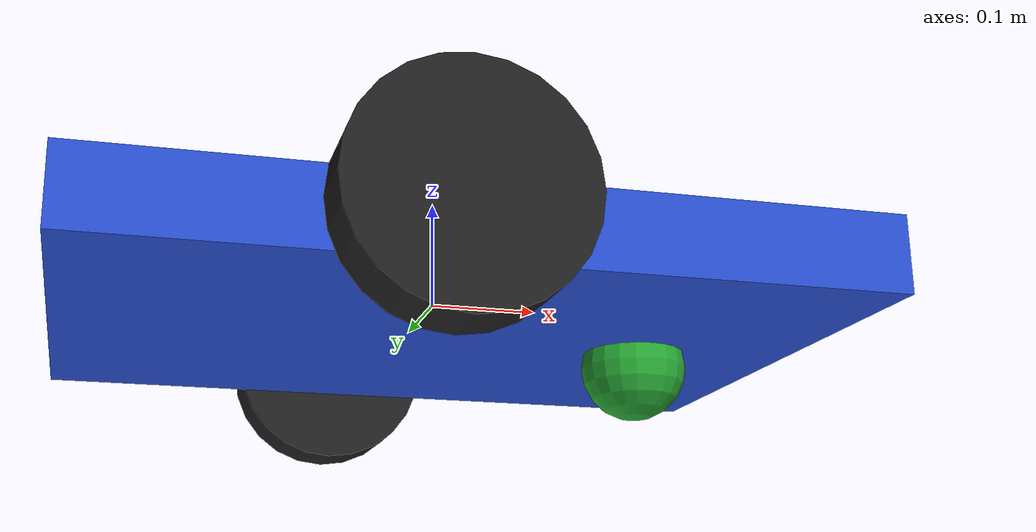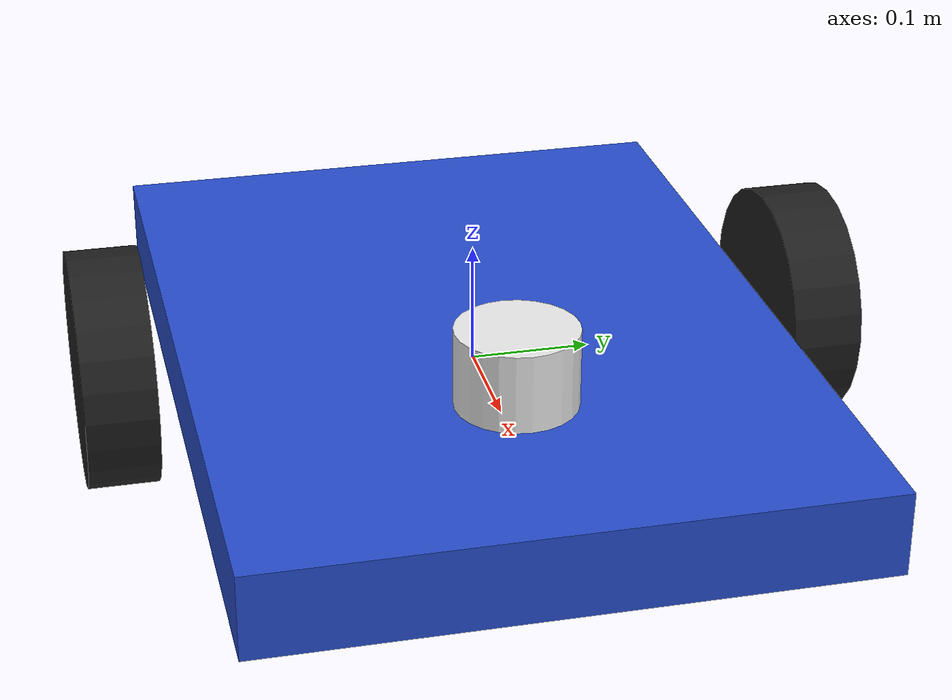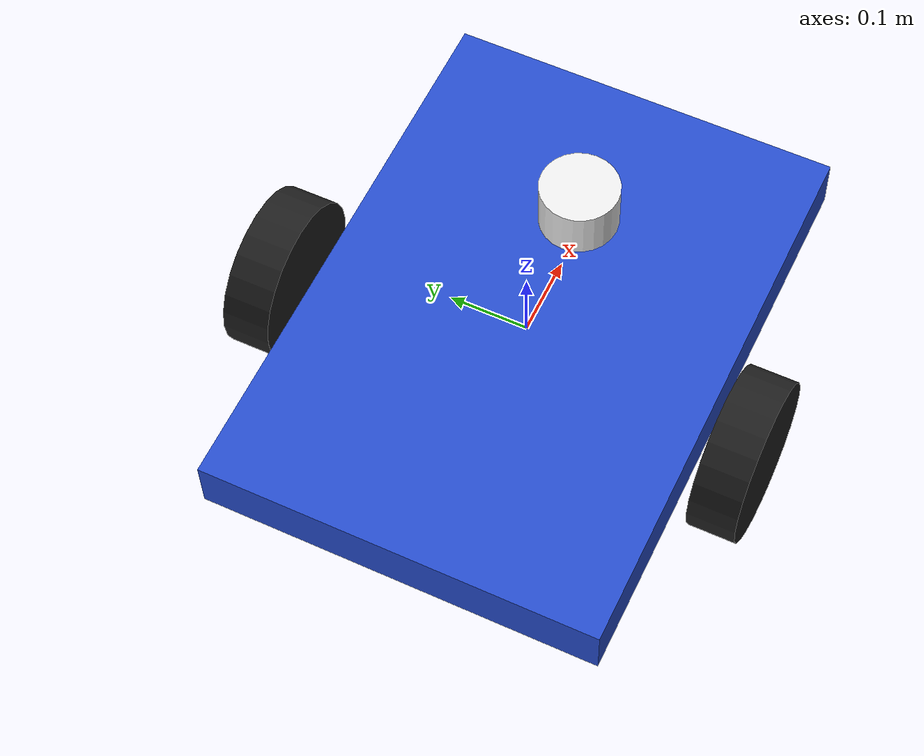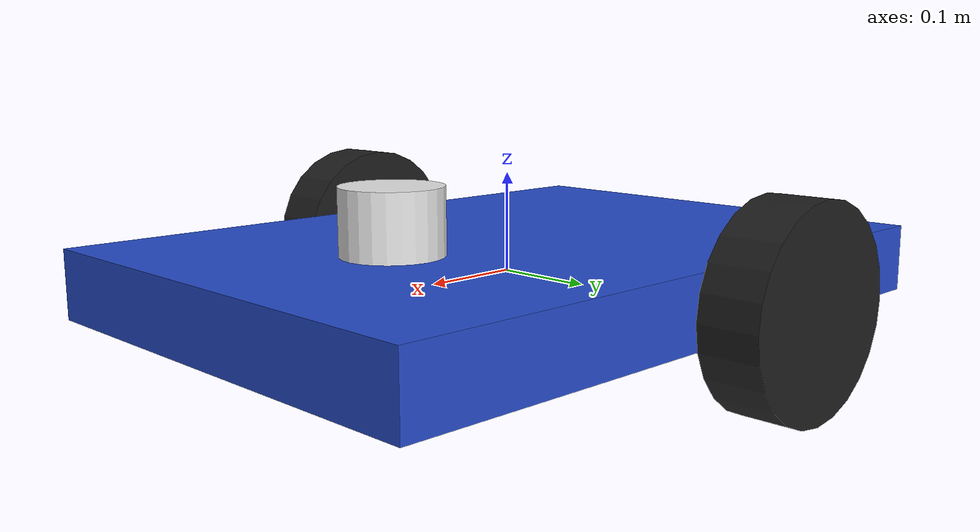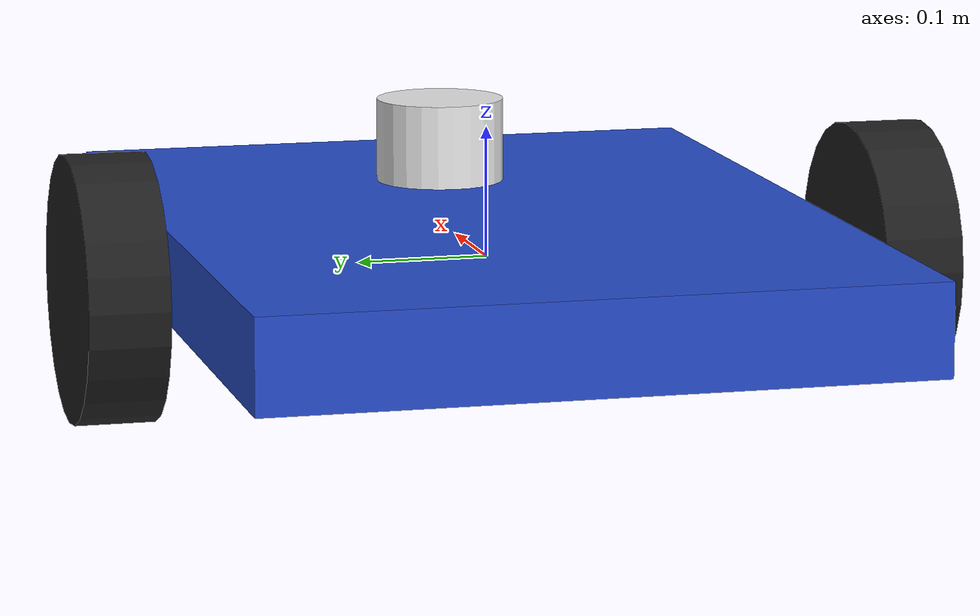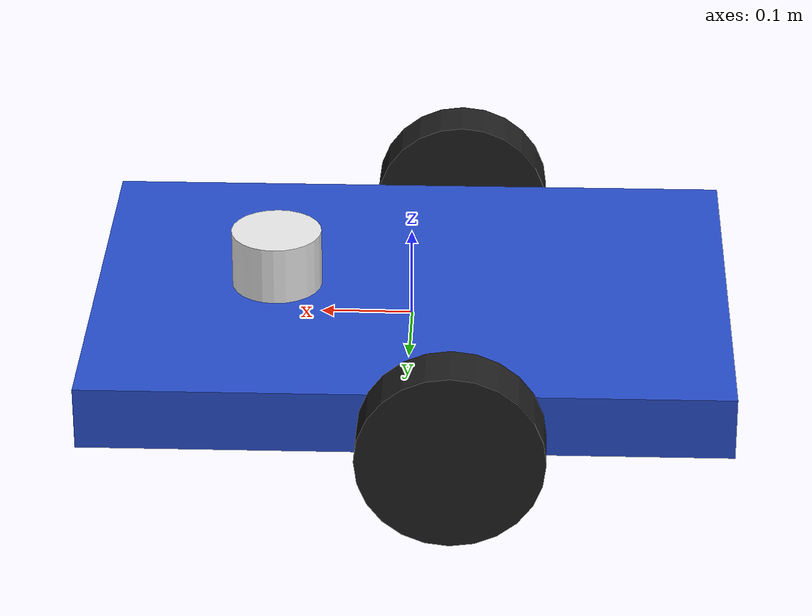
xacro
<?xml version="1.0" ?>

<robot name="robot" xmlns:xacro="https://www.ros.org/wiki/xacro" >

  <!-- Include the Xacro files -->
  <xacro:include filename="$(find my_two_wheel_robot)/urdf/materials.xacro" />
  <xacro:include filename="$(find my_two_wheel_robot)/urdf/gazebo.xacro" />
  <xacro:include filename="$(find my_two_wheel_robot)/urdf/macro.xacro" />

  <!-- For controlling robot using keyboard -->
  <gazebo>
    <plugin filename="libgazebo_ros_diff_drive.so" name="differential_drive_controller">
      <alwaysOn>true</alwaysOn>
      <legacyMode>false</legacyMode>
      <updateRate>20</updateRate>
      <leftJoint>joint_left_wheel</leftJoint>
      <rightJoint>joint_right_wheel</rightJoint>
      <wheelSeparation>0.45</wheelSeparation>
      <wheelDiameter>0.2</wheelDiameter>
      <torque>0.1</torque>
      <commandTopic>cmd_vel</commandTopic>
      <odometryTopic>odom</odometryTopic>
      <odometryFrame>odom</odometryFrame>
      <robotBaseFrame>link_chassis</robotBaseFrame>
    </plugin>
  </gazebo>

  <!-- chassis definition -->
  <link name="link_chassis">
    <!-- pose and inertial -->
    <pose>0 0 0.1 0 0 0</pose>

    <inertial>
      <mass value="5"/>
      <origin rpy="0 0 0" xyz="0 0 0.1"/>
      <inertia ixx="0.0395416666667" ixy="0" ixz="0" iyy="0.106208333333" iyz="0" izz="0.106208333333"/>
    </inertial>

    <collision name="collision_chassis">
      <geometry>
        <box size="0.7 0.5 0.07"/>
      </geometry>
    </collision>

    <visual>
      <origin rpy="0 0 0" xyz="0 0 0"/>
      <geometry>
        <box size="0.7 0.5 0.07"/>
      </geometry>
      <material name="blue"/>
    </visual>

    <!-- caster front -->
    <collision name="caster_front_collision">
      <origin rpy=" 0 0 0" xyz="0.35 0 -0.05"/>
      <geometry>
        <sphere radius="0.05"/>
      </geometry>
      <surface>
        <friction>
          <ode>
            <mu>0</mu>
            <mu2>0</mu2>
            <slip1>1.0</slip1>
            <slip2>1.0</slip2>
          </ode>
        </friction>
      </surface>
    </collision>
    <visual name="caster_front_visual">
      <origin rpy=" 0 0 0" xyz="0.2 0 -0.05"/>
      <geometry>
        <sphere radius="0.05"/>
      </geometry>
    </visual>
  </link>

  <!-- Link for laser -->
  <link name="sensor_laser">
    <inertial>
      <origin xyz="0 0 0" rpy="0 0 0" />
      <mass value="4" />
      <xacro:cylinder_inertia mass="1" r="0.05" l="0.1" />
    </inertial>

    <visual>
      <origin xyz="0 0 0" rpy="0 0 0" />
      <geometry>
        <cylinder radius="0.05" length="0.1"/>
      </geometry>
      <material name="white" />
      <material name="laserLight" />
    </visual>

    <collision>
      <origin xyz="0 0 0" rpy="0 0 0"/>
      <geometry>
        <cylinder radius="0.05" length="0.1"/>
      </geometry>
      <material name="collisionLaser" />
    </collision>
  </link>

  <!-- Joint for laser -->
  <joint name="joint_sensor_laser" type="fixed">
    <origin xyz="0.15 0 0.05" rpy="0 0 0"/>
    <parent link="link_chassis"/>
    <child link="sensor_laser"/>
  </joint>

  <!-- Right Wheel Link -->
  <xacro:link_wheel name="link_right_wheel" />

  <!--   Joint for right wheel  -->
  <xacro:joint_wheel name="joint_right_wheel"  child="link_right_wheel"  origin_xyz="-0.05 0.3 0"  />

  <!-- Left Wheel link -->
  <xacro:link_wheel name="link_left_wheel" />

  <!--   Joint for left wheel  -->
  <xacro:joint_wheel name="joint_left_wheel"   child="link_left_wheel"   origin_xyz="-0.05 -0.3 0"  />

</robot>

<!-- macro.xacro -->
<robot xmlns:xacro="http://www.ros.org/wiki/xacro">
  <xacro:macro name="link_wheel" params="name">
    <link name="${name}">
      <inertial>
        <mass value="0.2"/>
        <origin rpy="0 1.5707 1.5707" xyz="0 0 0"/>
        <inertia ixx="0.000526666666667" ixy="0" ixz="0" iyy="0.000526666666667" iyz="0" izz="0.001"/>
      </inertial>
      <collision name="link_right_wheel_collision">
        <origin rpy="0 1.5707 1.5707" xyz="0 0 0"/>
        <geometry>
          <cylinder length="0.06" radius="0.1"/>
        </geometry>
      </collision>
      <visual name="${name}_visual">
        <origin rpy="0 1.5707 1.5707" xyz="0 0 0"/>
        <geometry>
          <cylinder length="0.06" radius="0.1"/>
        </geometry>
      </visual>
    </link>
  </xacro:macro>

  <xacro:macro name="joint_wheel" params="name child origin_xyz">
    <joint name="${name}" type="continuous">
      <origin rpy="0 0 0" xyz="${origin_xyz}"/>
      <child link="${child}"/>
      <parent link="link_chassis"/>
      <axis rpy="0 0 0" xyz="0 1 0"/>
      <limit effort="10000" velocity="1000"/>
      <joint_properties damping="1.0" friction="1.0"/>
    </joint>
  </xacro:macro>

  <xacro:macro name="cylinder_inertia" params="mass r l">
    <inertia ixx="${mass*(3*r*r+l*l)/12}" ixy = "0" ixz = "0"
              iyy="${mass*(3*r*r+l*l)/12}" iyz = "0" izz="${mass*(r*r)/2}" />
  </xacro:macro>
</robot>
